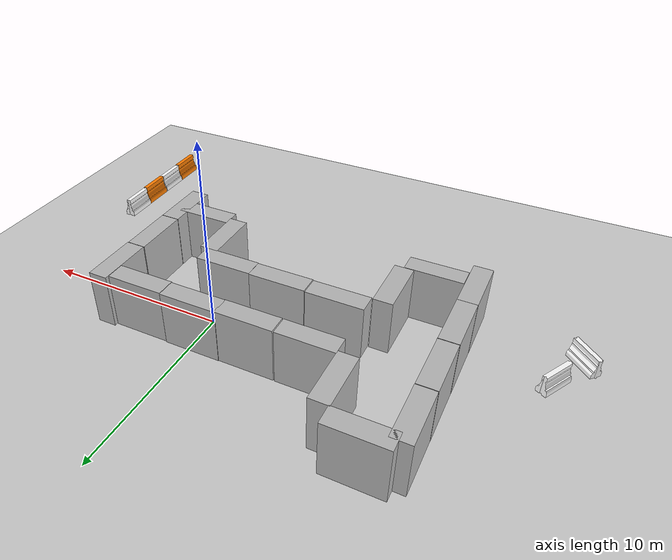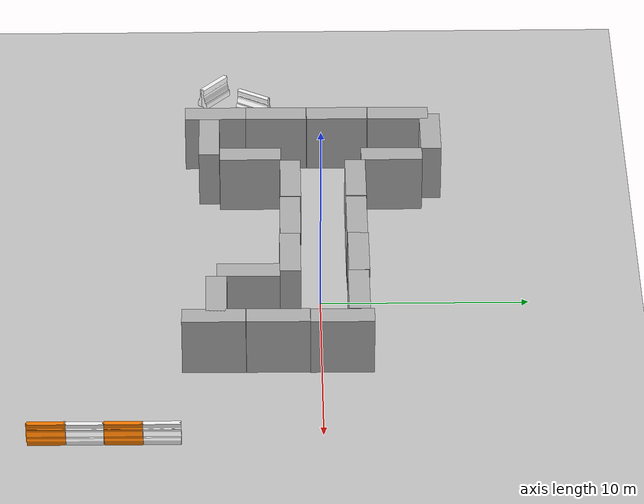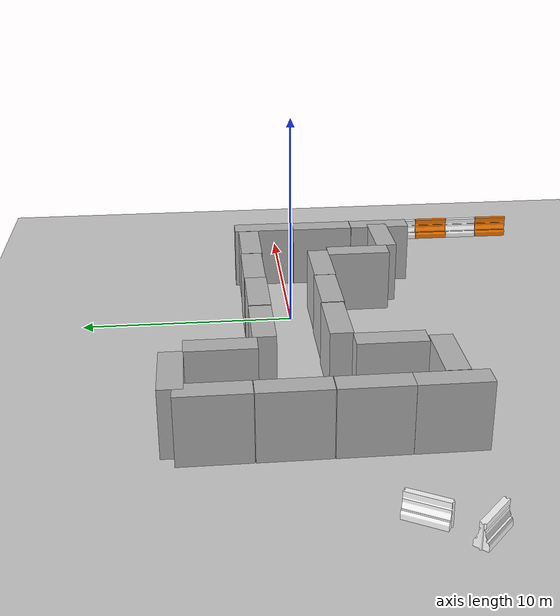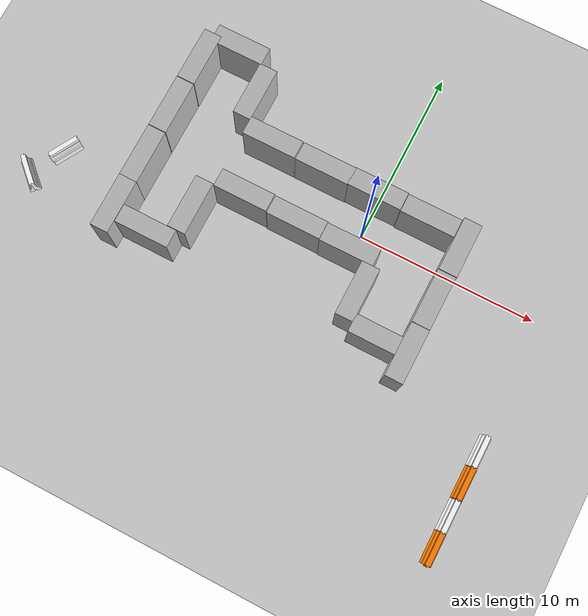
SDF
<sdf version="1.6">
 <world name="default">
  <light name="sun" type="directional">
   <pose>0 0 10 0 -0 0</pose>
   <diffuse>0.8 0.8 0.8 1</diffuse>
   <specular>0.2 0.2 0.2 1</specular>
   <attenuation>
    <range>1000</range>
    <constant>0.9</constant>
    <linear>0.01</linear>
    <quadratic>0.001</quadratic>
   </attenuation>
   <direction>-0.5 0.1 -0.9</direction>
  </light>
  <model name="ground_plane">
   <static>1</static>
   <link name="link">
    <collision name="collision">
     <geometry><plane><normal>0 0 1</normal><size>100 100</size></plane></geometry>
     <surface><friction><ode><mu>100</mu><mu2>50</mu2></ode></friction></surface>
    </collision>
    <visual name="visual">
     <cast_shadows>0</cast_shadows>
     <geometry><plane><normal>0 0 1</normal><size>100 100</size></plane></geometry>
     <material>
      <script><uri>file://media/materials/scripts/gazebo.material</uri><name>Gazebo/Grey</name></script>
     </material>
    </visual>
    <velocity_decay><linear>0</linear><angular>0</angular></velocity_decay>
   </link>
  </model>
  <physics name="default_physics" default="0" type="ode">
   <max_step_size>0.001</max_step_size>
   <real_time_factor>1</real_time_factor>
   <real_time_update_rate>1000</real_time_update_rate>
  </physics>
  <scene><ambient>0.4 0.4 0.4 1</ambient><background>0.7 0.7 0.7 1</background><shadows>1</shadows></scene>
  <spherical_coordinates>
   <surface_model>EARTH_WGS84</surface_model>
   <latitude_deg>0</latitude_deg>
   <longitude_deg>0</longitude_deg>
   <elevation>0</elevation>
   <heading_deg>0</heading_deg>
  </spherical_coordinates>
  <model name="drc_practice_white_jersey_barrier_0">
   <static>1</static>
   <link name="link">
    <visual name="visual">
     <geometry>
      <mesh><uri>model://drc_practice_white_jersey_barrier/meshes/jersey_barrier.dae</uri></mesh>
     </geometry>
    </visual>
    <collision name="collision">
     <geometry>
      <mesh><uri>model://drc_practice_white_jersey_barrier/meshes/jersey_barrier.dae</uri></mesh>
     </geometry>
    </collision>
    <velocity_decay><linear>0</linear><angular>0</angular></velocity_decay>
   </link>
   <pose>10.3176 -7.4365 0 0 -0 0</pose>
  </model>
  <model name="drc_practice_organge_jersey_barrier_2">
   <static>1</static>
   <link name="link">
    <visual name="visual">
     <geometry>
      <mesh><uri>model://drc_practice_orange_jersey_barrier/meshes/jersey_barrier.dae</uri></mesh>
     </geometry>
    </visual>
    <collision name="collision">
     <geometry>
      <mesh><uri>model://drc_practice_orange_jersey_barrier/meshes/jersey_barrier.dae</uri></mesh>
     </geometry>
    </collision>
    <velocity_decay><linear>0</linear><angular>0</angular></velocity_decay>
   </link>
   <pose>10.3218 -9.21435 0 0 -0 0</pose>
  </model>
  <model name="drc_practice_white_jersey_barrier_2">
   <static>1</static>
   <link name="link">
    <visual name="visual">
     <geometry>
      <mesh><uri>model://drc_practice_white_jersey_barrier/meshes/jersey_barrier.dae</uri></mesh>
     </geometry>
    </visual>
    <collision name="collision">
     <geometry>
      <mesh><uri>model://drc_practice_white_jersey_barrier/meshes/jersey_barrier.dae</uri></mesh>
     </geometry>
    </collision>
    <velocity_decay><linear>0</linear><angular>0</angular></velocity_decay>
   </link>
   <pose>10.3136 -11.0025 0 0 -0 0</pose>
  </model>
  <model name="drc_practice_organge_jersey_barrier_3">
   <static>1</static>
   <link name="link">
    <visual name="visual">
     <geometry>
      <mesh><uri>model://drc_practice_orange_jersey_barrier/meshes/jersey_barrier.dae</uri></mesh>
     </geometry>
    </visual>
    <collision name="collision">
     <geometry>
      <mesh><uri>model://drc_practice_orange_jersey_barrier/meshes/jersey_barrier.dae</uri></mesh>
     </geometry>
    </collision>
    <velocity_decay><linear>0</linear><angular>0</angular></velocity_decay>
   </link>
   <pose>10.3067 -12.7762 0 0 -0 0</pose>
  </model>
  <model name="drc_practice_white_jersey_barrier_3">
   <static>1</static>
   <link name="link">
    <visual name="visual">
     <geometry>
      <mesh><uri>model://drc_practice_white_jersey_barrier/meshes/jersey_barrier.dae</uri></mesh>
     </geometry>
    </visual>
    <collision name="collision">
     <geometry>
      <mesh><uri>model://drc_practice_white_jersey_barrier/meshes/jersey_barrier.dae</uri></mesh>
     </geometry>
    </collision>
    <velocity_decay><linear>0</linear><angular>0</angular></velocity_decay>
   </link>
   <pose>-16.2875 -3.11229 0 0 0 -0.509254</pose>
  </model>
  <model name="drc_practice_white_jersey_barrier_4">
   <static>1</static>
   <link name="link">
    <visual name="visual">
     <geometry>
      <mesh><uri>model://drc_practice_white_jersey_barrier/meshes/jersey_barrier.dae</uri></mesh>
     </geometry>
    </visual>
    <collision name="collision">
     <geometry>
      <mesh><uri>model://drc_practice_white_jersey_barrier/meshes/jersey_barrier.dae</uri></mesh>
     </geometry>
    </collision>
    <velocity_decay><linear>0</linear><angular>0</angular></velocity_decay>
   </link>
   <pose>-17.3228 -5.14571 0 0 0 -2.31969</pose>
  </model>
  <gravity>0 0 -9.8</gravity>
  <magnetic_field>6e-06 2.3e-05 -4.2e-05</magnetic_field>
  <atmosphere type="adiabatic"/>
  <audio><device>default</device></audio>
  <model name="brick_box_3x1x3">
   <static>1</static>
   <link name="chassis">
    <pose>0 0 1.5 0 -0 0</pose>
    <collision name="collision"><geometry><box><size>3 1 3</size></box></geometry></collision>
    <visual name="visual">
     <geometry><mesh><uri>model://brick_box_3x1x3/meshes/simple_box.dae</uri><scale>3 1 3</scale></mesh></geometry>
     <material>
      <script>
       <uri>model://brick_box_3x1x3/materials/scripts</uri>
       <uri>model://brick_box_3x1x3/materials/textures</uri>
       <name>BrickBox/Diffuse</name>
      </script>
     </material>
    </visual>
   </link>
   <pose>-0.2131 1.82594 0 0 -0 0</pose>
  </model>
  <model name="brick_box_3x1x3_clone">
   <static>1</static>
   <link name="chassis">
    <pose>0 0 1.5 0 -0 0</pose>
    <collision name="collision"><geometry><box><size>3 1 3</size></box></geometry></collision>
    <visual name="visual">
     <geometry><mesh><uri>model://brick_box_3x1x3/meshes/simple_box.dae</uri><scale>3 1 3</scale></mesh></geometry>
     <material>
      <script>
       <uri>model://brick_box_3x1x3/materials/scripts</uri>
       <uri>model://brick_box_3x1x3/materials/textures</uri>
       <name>BrickBox/Diffuse</name>
      </script>
     </material>
    </visual>
   </link>
   <pose>-3.16934 1.80141 0 0 -0 0</pose>
  </model>
  <model name="brick_box_3x1x3_clone_0">
   <static>1</static>
   <link name="chassis">
    <pose>0 0 1.5 0 -0 0</pose>
    <collision name="collision"><geometry><box><size>3 1 3</size></box></geometry></collision>
    <visual name="visual">
     <geometry><mesh><uri>model://brick_box_3x1x3/meshes/simple_box.dae</uri><scale>3 1 3</scale></mesh></geometry>
     <material>
      <script>
       <uri>model://brick_box_3x1x3/materials/scripts</uri>
       <uri>model://brick_box_3x1x3/materials/textures</uri>
       <name>BrickBox/Diffuse</name>
      </script>
     </material>
    </visual>
   </link>
   <pose>-6.23034 1.81365 -0 0 -0 0</pose>
  </model>
  <model name="brick_box_3x1x3_clone_1">
   <static>1</static>
   <link name="chassis">
    <pose>0 0 1.5 0 -0 0</pose>
    <collision name="collision"><geometry><box><size>3 1 3</size></box></geometry></collision>
    <visual name="visual">
     <geometry><mesh><uri>model://brick_box_3x1x3/meshes/simple_box.dae</uri><scale>3 1 3</scale></mesh></geometry>
     <material>
      <script>
       <uri>model://brick_box_3x1x3/materials/scripts</uri>
       <uri>model://brick_box_3x1x3/materials/textures</uri>
       <name>BrickBox/Diffuse</name>
      </script>
     </material>
    </visual>
   </link>
   <pose>2.80963 1.78236 0 0 -0 0</pose>
  </model>
  <model name="brick_box_3x1x3_clone_2">
   <static>1</static>
   <link name="chassis">
    <pose>0 0 1.5 0 -0 0</pose>
    <collision name="collision"><geometry><box><size>3 1 3</size></box></geometry></collision>
    <visual name="visual">
     <geometry><mesh><uri>model://brick_box_3x1x3/meshes/simple_box.dae</uri><scale>3 1 3</scale></mesh></geometry>
     <material>
      <script>
       <uri>model://brick_box_3x1x3/materials/scripts</uri>
       <uri>model://brick_box_3x1x3/materials/textures</uri>
       <name>BrickBox/Diffuse</name>
      </script>
     </material>
    </visual>
   </link>
   <pose>-0.152752 -1.44226 -0 0 -0 0</pose>
  </model>
  <model name="brick_box_3x1x3_clone_3">
   <static>1</static>
   <link name="chassis">
    <pose>0 0 1.5 0 -0 0</pose>
    <collision name="collision"><geometry><box><size>3 1 3</size></box></geometry></collision>
    <visual name="visual">
     <geometry><mesh><uri>model://brick_box_3x1x3/meshes/simple_box.dae</uri><scale>3 1 3</scale></mesh></geometry>
     <material>
      <script>
       <uri>model://brick_box_3x1x3/materials/scripts</uri>
       <uri>model://brick_box_3x1x3/materials/textures</uri>
       <name>BrickBox/Diffuse</name>
      </script>
     </material>
    </visual>
   </link>
   <pose>-3.1618 -1.40759 0 0 -0 0</pose>
  </model>
  <model name="brick_box_3x1x3_clone_3_clone">
   <static>1</static>
   <link name="chassis">
    <pose>0 0 1.5 0 -0 0</pose>
    <collision name="collision"><geometry><box><size>3 1 3</size></box></geometry></collision>
    <visual name="visual">
     <geometry><mesh><uri>model://brick_box_3x1x3/meshes/simple_box.dae</uri><scale>3 1 3</scale></mesh></geometry>
     <material>
      <script>
       <uri>model://brick_box_3x1x3/materials/scripts</uri>
       <uri>model://brick_box_3x1x3/materials/textures</uri>
       <name>BrickBox/Diffuse</name>
      </script>
     </material>
    </visual>
   </link>
   <pose>-6.21103 -1.36198 0 0 -0 0</pose>
  </model>
  <model name="brick_box_3x1x3_clone_3_clone_0">
   <static>1</static>
   <link name="chassis">
    <pose>0 0 1.5 0 -0 0</pose>
    <collision name="collision"><geometry><box><size>3 1 3</size></box></geometry></collision>
    <visual name="visual">
     <geometry><mesh><uri>model://brick_box_3x1x3/meshes/simple_box.dae</uri><scale>3 1 3</scale></mesh></geometry>
     <material>
      <script>
       <uri>model://brick_box_3x1x3/materials/scripts</uri>
       <uri>model://brick_box_3x1x3/materials/textures</uri>
       <name>BrickBox/Diffuse</name>
      </script>
     </material>
    </visual>
   </link>
   <pose>-8.21318 3.6272 0 0 0 -1.57365</pose>
  </model>
  <model name="brick_box_3x1x3_clone_3_clone_0_clone">
   <static>1</static>
   <link name="chassis">
    <pose>0 0 1.5 0 -0 0</pose>
    <collision name="collision"><geometry><box><size>3 1 3</size></box></geometry></collision>
    <visual name="visual">
     <geometry><mesh><uri>model://brick_box_3x1x3/meshes/simple_box.dae</uri><scale>3 1 3</scale></mesh></geometry>
     <material>
      <script>
       <uri>model://brick_box_3x1x3/materials/scripts</uri>
       <uri>model://brick_box_3x1x3/materials/textures</uri>
       <name>BrickBox/Diffuse</name>
      </script>
     </material>
    </visual>
   </link>
   <pose>-8.26679 -3.30504 0 0 0 -1.57365</pose>
  </model>
  <model name="brick_box_3x1x3_clone_3_clone_0_clone_0">
   <static>1</static>
   <link name="chassis">
    <pose>0 0 1.5 0 -0 0</pose>
    <collision name="collision"><geometry><box><size>3 1 3</size></box></geometry></collision>
    <visual name="visual">
     <geometry><mesh><uri>model://brick_box_3x1x3/meshes/simple_box.dae</uri><scale>3 1 3</scale></mesh></geometry>
     <material>
      <script>
       <uri>model://brick_box_3x1x3/materials/scripts</uri>
       <uri>model://brick_box_3x1x3/materials/textures</uri>
       <name>BrickBox/Diffuse</name>
      </script>
     </material>
    </visual>
   </link>
   <pose>-11.7195 4.0247 0 0 0 -1.57365</pose>
  </model>
  <model name="brick_box_3x1x3_clone_3_clone_0_clone_1">
   <static>1</static>
   <link name="chassis">
    <pose>0 0 1.5 0 -0 0</pose>
    <collision name="collision"><geometry><box><size>3 1 3</size></box></geometry></collision>
    <visual name="visual">
     <geometry><mesh><uri>model://brick_box_3x1x3/meshes/simple_box.dae</uri><scale>3 1 3</scale></mesh></geometry>
     <material>
      <script>
       <uri>model://brick_box_3x1x3/materials/scripts</uri>
       <uri>model://brick_box_3x1x3/materials/textures</uri>
       <name>BrickBox/Diffuse</name>
      </script>
     </material>
    </visual>
   </link>
   <pose>-11.7352 0.998389 0 0 0 -1.57365</pose>
  </model>
  <model name="brick_box_3x1x3_clone_3_clone_0_clone_2">
   <static>1</static>
   <link name="chassis">
    <pose>0 0 1.5 0 -0 0</pose>
    <collision name="collision"><geometry><box><size>3 1 3</size></box></geometry></collision>
    <visual name="visual">
     <geometry><mesh><uri>model://brick_box_3x1x3/meshes/simple_box.dae</uri><scale>3 1 3</scale></mesh></geometry>
     <material>
      <script>
       <uri>model://brick_box_3x1x3/materials/scripts</uri>
       <uri>model://brick_box_3x1x3/materials/textures</uri>
       <name>BrickBox/Diffuse</name>
      </script>
     </material>
    </visual>
   </link>
   <pose>-11.7509 -2.02788 0 0 0 -1.57365</pose>
  </model>
  <model name="brick_box_3x1x3_clone_3_clone_0_clone_3">
   <static>1</static>
   <link name="chassis">
    <pose>0 0 1.5 0 -0 0</pose>
    <collision name="collision"><geometry><box><size>3 1 3</size></box></geometry></collision>
    <visual name="visual">
     <geometry><mesh><uri>model://brick_box_3x1x3/meshes/simple_box.dae</uri><scale>3 1 3</scale></mesh></geometry>
     <material>
      <script>
       <uri>model://brick_box_3x1x3/materials/scripts</uri>
       <uri>model://brick_box_3x1x3/materials/textures</uri>
       <name>BrickBox/Diffuse</name>
      </script>
     </material>
    </visual>
   </link>
   <pose>-11.7662 -5.02642 0 0 0 -1.57365</pose>
  </model>
  <model name="brick_box_3x1x3_clone_0_clone">
   <static>1</static>
   <link name="chassis">
    <pose>0 0 1.5 0 -0 0</pose>
    <collision name="collision"><geometry><box><size>3 1 3</size></box></geometry></collision>
    <visual name="visual">
     <geometry><mesh><uri>model://brick_box_3x1x3/meshes/simple_box.dae</uri><scale>3 1 3</scale></mesh></geometry>
     <material>
      <script>
       <uri>model://brick_box_3x1x3/materials/scripts</uri>
       <uri>model://brick_box_3x1x3/materials/textures</uri>
       <name>BrickBox/Diffuse</name>
      </script>
     </material>
    </visual>
   </link>
   <pose>-10.1299 5.5911 0 0 -0 0</pose>
  </model>
  <model name="brick_box_3x1x3_clone_0_clone_0">
   <static>1</static>
   <link name="chassis">
    <pose>0 0 1.5 0 -0 0</pose>
    <collision name="collision"><geometry><box><size>3 1 3</size></box></geometry></collision>
    <visual name="visual">
     <geometry><mesh><uri>model://brick_box_3x1x3/meshes/simple_box.dae</uri><scale>3 1 3</scale></mesh></geometry>
     <material>
      <script>
       <uri>model://brick_box_3x1x3/materials/scripts</uri>
       <uri>model://brick_box_3x1x3/materials/textures</uri>
       <name>BrickBox/Diffuse</name>
      </script>
     </material>
    </visual>
   </link>
   <pose>-9.74772 -5.33231 0 0 -0 0</pose>
  </model>
  <model name="brick_box_3x1x3_clone_3_clone_0_clone_4">
   <static>1</static>
   <link name="chassis">
    <pose>0 0 1.5 0 -0 0</pose>
    <collision name="collision"><geometry><box><size>3 1 3</size></box></geometry></collision>
    <visual name="visual">
     <geometry><mesh><uri>model://brick_box_3x1x3/meshes/simple_box.dae</uri><scale>3 1 3</scale></mesh></geometry>
     <material>
      <script>
       <uri>model://brick_box_3x1x3/materials/scripts</uri>
       <uri>model://brick_box_3x1x3/materials/textures</uri>
       <name>BrickBox/Diffuse</name>
      </script>
     </material>
    </visual>
   </link>
   <pose>4.83425 0.964795 0 0 0 -1.57365</pose>
  </model>
  <model name="brick_box_3x1x3_clone_3_clone_0_clone_5">
   <static>1</static>
   <link name="chassis">
    <pose>0 0 1.5 0 -0 0</pose>
    <collision name="collision"><geometry><box><size>3 1 3</size></box></geometry></collision>
    <visual name="visual">
     <geometry><mesh><uri>model://brick_box_3x1x3/meshes/simple_box.dae</uri><scale>3 1 3</scale></mesh></geometry>
     <material>
      <script>
       <uri>model://brick_box_3x1x3/materials/scripts</uri>
       <uri>model://brick_box_3x1x3/materials/textures</uri>
       <name>BrickBox/Diffuse</name>
      </script>
     </material>
    </visual>
   </link>
   <pose>4.79521 -2.05152 0 0 0 -1.57365</pose>
  </model>
  <model name="brick_box_3x1x3_clone_3_clone_0_clone_6">
   <static>1</static>
   <link name="chassis">
    <pose>0 0 1.5 0 -0 0</pose>
    <collision name="collision"><geometry><box><size>3 1 3</size></box></geometry></collision>
    <visual name="visual">
     <geometry><mesh><uri>model://brick_box_3x1x3/meshes/simple_box.dae</uri><scale>3 1 3</scale></mesh></geometry>
     <material>
      <script>
       <uri>model://brick_box_3x1x3/materials/scripts</uri>
       <uri>model://brick_box_3x1x3/materials/textures</uri>
       <name>BrickBox/Diffuse</name>
      </script>
     </material>
    </visual>
   </link>
   <pose>4.7841 -5.06738 0 0 0 -1.57365</pose>
  </model>
  <model name="brick_box_3x1x3_clone_2_clone_0">
   <static>1</static>
   <link name="chassis">
    <pose>0 0 1.5 0 -0 0</pose>
    <collision name="collision"><geometry><box><size>3 1 3</size></box></geometry></collision>
    <visual name="visual">
     <geometry><mesh><uri>model://brick_box_3x1x3/meshes/simple_box.dae</uri><scale>3 1 3</scale></mesh></geometry>
     <material>
      <script>
       <uri>model://brick_box_3x1x3/materials/scripts</uri>
       <uri>model://brick_box_3x1x3/materials/textures</uri>
       <name>BrickBox/Diffuse</name>
      </script>
     </material>
    </visual>
   </link>
   <pose>3.21854 -4.95092 0 0 -0 0</pose>
  </model>
  <model name="brick_box_3x1x3_clone_3_clone_0_clone_clone">
   <static>1</static>
   <link name="chassis">
    <pose>0 0 1.5 0 -0 0</pose>
    <collision name="collision"><geometry><box><size>3 1 3</size></box></geometry></collision>
    <visual name="visual">
     <geometry><mesh><uri>model://brick_box_3x1x3/meshes/simple_box.dae</uri><scale>3 1 3</scale></mesh></geometry>
     <material>
      <script>
       <uri>model://brick_box_3x1x3/materials/scripts</uri>
       <uri>model://brick_box_3x1x3/materials/textures</uri>
       <name>BrickBox/Diffuse</name>
      </script>
     </material>
    </visual>
   </link>
   <pose>1.24741 -3.42654 0 0 0 -1.57365</pose>
  </model>
 </world>
</sdf>
